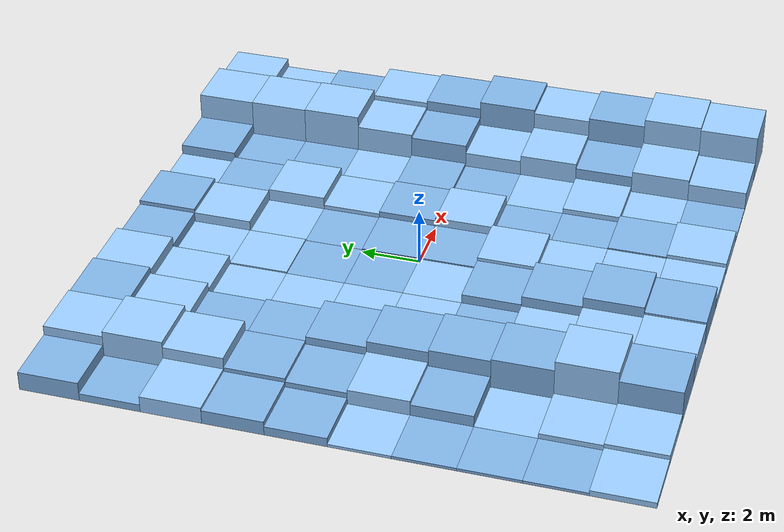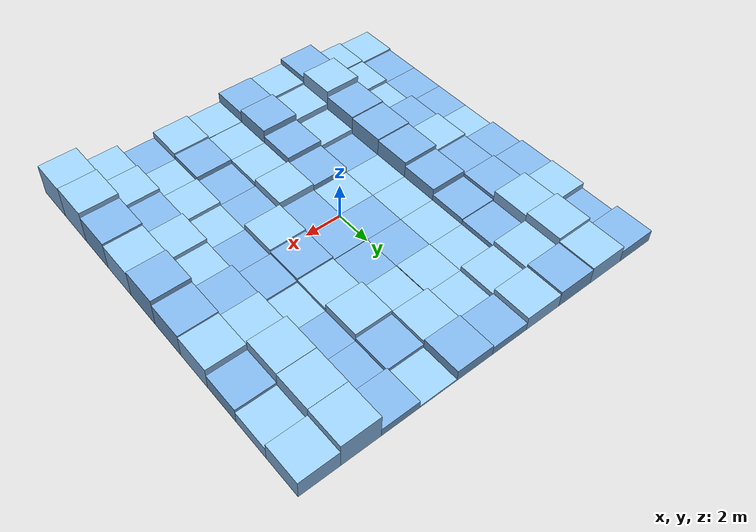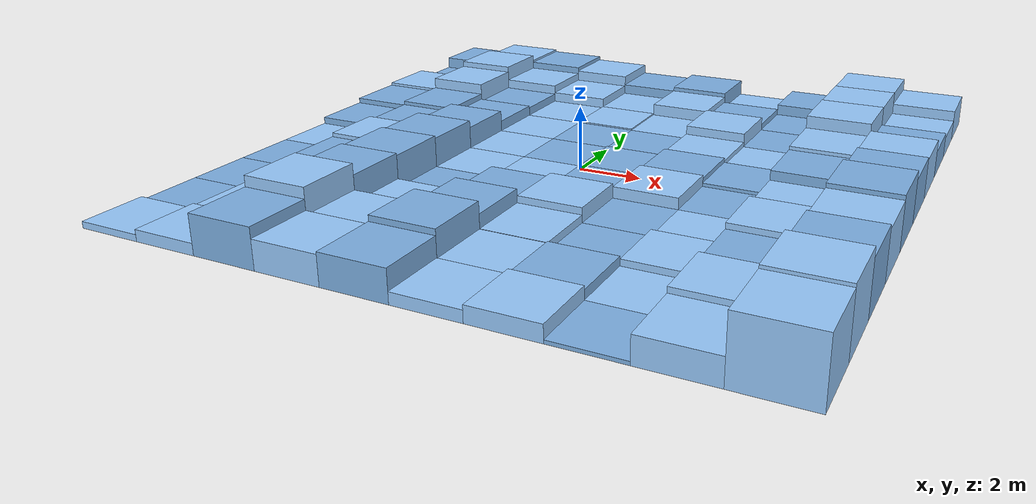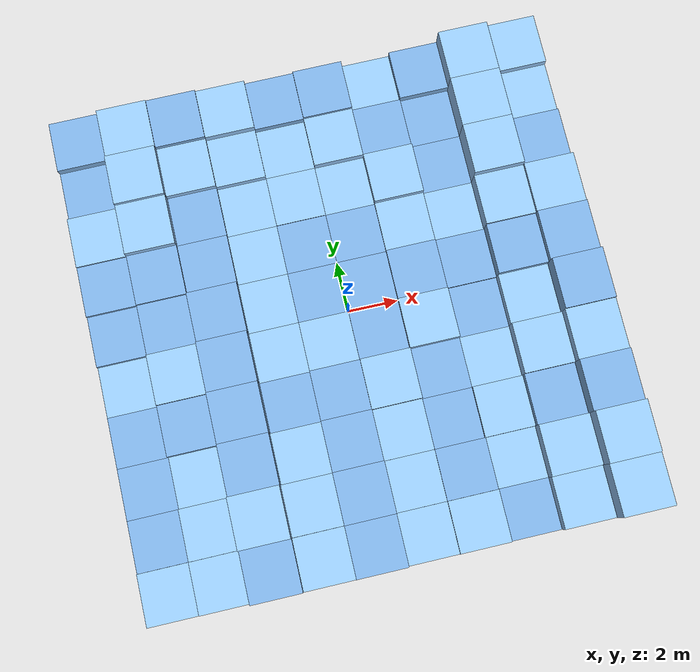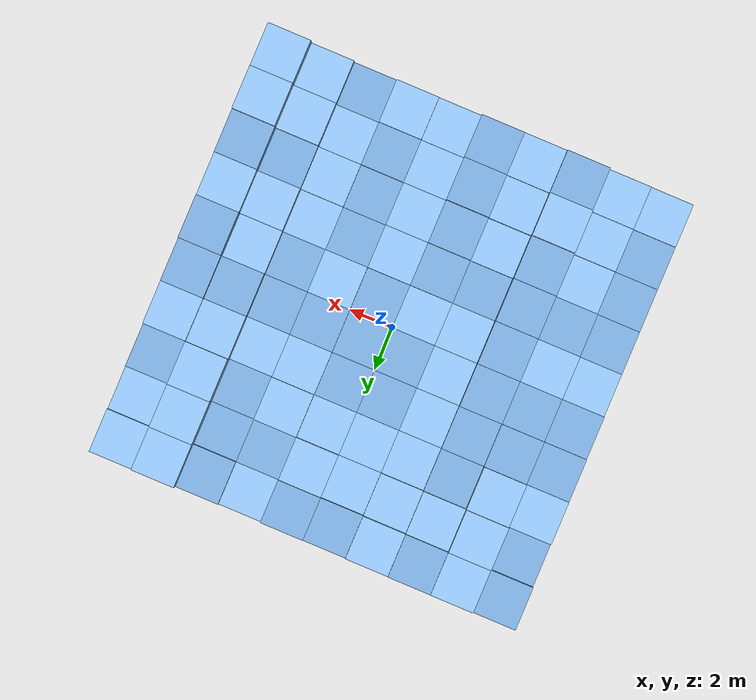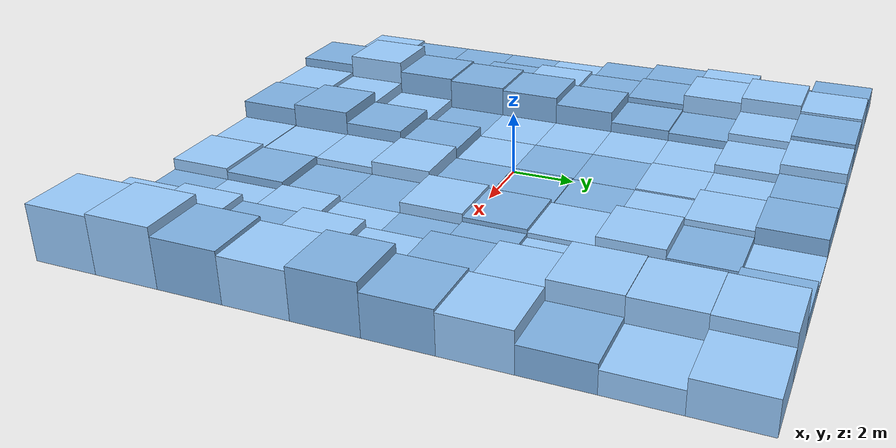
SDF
<?xml version='1.0'?>
<sdf version='1.6'>
  <world name='default'>
    <light name='sun' type='directional'>
      <cast_shadows>1</cast_shadows>
      <pose>0 0 50 0 0 0</pose>
      <diffuse>0.8 0.8 0.8 1</diffuse>
      <specular>0.2 0.2 0.2 1</specular>
      <direction>-0.5 0.5 -1</direction>
      <attenuation>
        <range>500</range>
        <constant>0.9</constant>
        <linear>0.01</linear>
        <quadratic>0.001</quadratic>
      </attenuation>
      <ambient>0.4 0.4 0.4 1</ambient>
    </light>

<model name='step_0_0'>
  <static>true</static>
  <pose>-9.0 -9.0 0.10037303684798088 0 0 0</pose>
  <link name='link'>
    <collision name='collision'>
      <geometry>
        <box>
          <size>2 2 0.20074607369596176</size>
        </box>
      </geometry>
    </collision>
    <visual name='visual'>
      <geometry>
        <box>
          <size>2 2 0.20074607369596176</size>
        </box>
      </geometry>
      <material>
        <ambient>0.6 0.8 1.0 1</ambient>
        <diffuse>0.6 0.8 1.0 1</diffuse>
      </material>
    </visual>
  </link>
</model>

<model name='step_0_1'>
  <static>true</static>
  <pose>-9.0 -7.0 0.05 0 0 0</pose>
  <link name='link'>
    <collision name='collision'>
      <geometry>
        <box>
          <size>2 2 0.1</size>
        </box>
      </geometry>
    </collision>
    <visual name='visual'>
      <geometry>
        <box>
          <size>2 2 0.1</size>
        </box>
      </geometry>
      <material>
        <ambient>0.5 0.7 0.9 1</ambient>
        <diffuse>0.5 0.7 0.9 1</diffuse>
      </material>
    </visual>
  </link>
</model>

<model name='step_0_2'>
  <static>true</static>
  <pose>-9.0 -5.0 0.05 0 0 0</pose>
  <link name='link'>
    <collision name='collision'>
      <geometry>
        <box>
          <size>2 2 0.1</size>
        </box>
      </geometry>
    </collision>
    <visual name='visual'>
      <geometry>
        <box>
          <size>2 2 0.1</size>
        </box>
      </geometry>
      <material>
        <ambient>0.5 0.7 0.9 1</ambient>
        <diffuse>0.5 0.7 0.9 1</diffuse>
      </material>
    </visual>
  </link>
</model>

<model name='step_0_3'>
  <static>true</static>
  <pose>-9.0 -3.0 0.05 0 0 0</pose>
  <link name='link'>
    <collision name='collision'>
      <geometry>
        <box>
          <size>2 2 0.1</size>
        </box>
      </geometry>
    </collision>
    <visual name='visual'>
      <geometry>
        <box>
          <size>2 2 0.1</size>
        </box>
      </geometry>
      <material>
        <ambient>0.5 0.7 0.9 1</ambient>
        <diffuse>0.5 0.7 0.9 1</diffuse>
      </material>
    </visual>
  </link>
</model>

<model name='step_0_4'>
  <static>true</static>
  <pose>-9.0 -1.0 0.05 0 0 0</pose>
  <link name='link'>
    <collision name='collision'>
      <geometry>
        <box>
          <size>2 2 0.1</size>
        </box>
      </geometry>
    </collision>
    <visual name='visual'>
      <geometry>
        <box>
          <size>2 2 0.1</size>
        </box>
      </geometry>
      <material>
        <ambient>0.6 0.8 1.0 1</ambient>
        <diffuse>0.6 0.8 1.0 1</diffuse>
      </material>
    </visual>
  </link>
</model>

<model name='step_0_5'>
  <static>true</static>
  <pose>-9.0 1.0 0.16010938551985915 0 0 0</pose>
  <link name='link'>
    <collision name='collision'>
      <geometry>
        <box>
          <size>2 2 0.3202187710397183</size>
        </box>
      </geometry>
    </collision>
    <visual name='visual'>
      <geometry>
        <box>
          <size>2 2 0.3202187710397183</size>
        </box>
      </geometry>
      <material>
        <ambient>0.5 0.7 0.9 1</ambient>
        <diffuse>0.5 0.7 0.9 1</diffuse>
      </material>
    </visual>
  </link>
</model>

<model name='step_0_6'>
  <static>true</static>
  <pose>-9.0 3.0 0.2469286984735154 0 0 0</pose>
  <link name='link'>
    <collision name='collision'>
      <geometry>
        <box>
          <size>2 2 0.4938573969470308</size>
        </box>
      </geometry>
    </collision>
    <visual name='visual'>
      <geometry>
        <box>
          <size>2 2 0.4938573969470308</size>
        </box>
      </geometry>
      <material>
        <ambient>0.5 0.7 0.9 1</ambient>
        <diffuse>0.5 0.7 0.9 1</diffuse>
      </material>
    </visual>
  </link>
</model>

<model name='step_0_7'>
  <static>true</static>
  <pose>-9.0 5.0 0.2935187337520725 0 0 0</pose>
  <link name='link'>
    <collision name='collision'>
      <geometry>
        <box>
          <size>2 2 0.587037467504145</size>
        </box>
      </geometry>
    </collision>
    <visual name='visual'>
      <geometry>
        <box>
          <size>2 2 0.587037467504145</size>
        </box>
      </geometry>
      <material>
        <ambient>0.6 0.8 1.0 1</ambient>
        <diffuse>0.6 0.8 1.0 1</diffuse>
      </material>
    </visual>
  </link>
</model>

<model name='step_0_8'>
  <static>true</static>
  <pose>-9.0 7.0 0.13311160754476217 0 0 0</pose>
  <link name='link'>
    <collision name='collision'>
      <geometry>
        <box>
          <size>2 2 0.26622321508952435</size>
        </box>
      </geometry>
    </collision>
    <visual name='visual'>
      <geometry>
        <box>
          <size>2 2 0.26622321508952435</size>
        </box>
      </geometry>
      <material>
        <ambient>0.5 0.7 0.9 1</ambient>
        <diffuse>0.5 0.7 0.9 1</diffuse>
      </material>
    </visual>
  </link>
</model>

<model name='step_0_9'>
  <static>true</static>
  <pose>-9.0 9.0 0.3322581530667359 0 0 0</pose>
  <link name='link'>
    <collision name='collision'>
      <geometry>
        <box>
          <size>2 2 0.6645163061334718</size>
        </box>
      </geometry>
    </collision>
    <visual name='visual'>
      <geometry>
        <box>
          <size>2 2 0.6645163061334718</size>
        </box>
      </geometry>
      <material>
        <ambient>0.5 0.7 0.9 1</ambient>
        <diffuse>0.5 0.7 0.9 1</diffuse>
      </material>
    </visual>
  </link>
</model>

<model name='step_1_0'>
  <static>true</static>
  <pose>-7.0 -9.0 0.1741225995129762 0 0 0</pose>
  <link name='link'>
    <collision name='collision'>
      <geometry>
        <box>
          <size>2 2 0.3482451990259524</size>
        </box>
      </geometry>
    </collision>
    <visual name='visual'>
      <geometry>
        <box>
          <size>2 2 0.3482451990259524</size>
        </box>
      </geometry>
      <material>
        <ambient>0.6 0.8 1.0 1</ambient>
        <diffuse>0.6 0.8 1.0 1</diffuse>
      </material>
    </visual>
  </link>
</model>

<model name='step_1_1'>
  <static>true</static>
  <pose>-7.0 -7.0 0.14295892030048302 0 0 0</pose>
  <link name='link'>
    <collision name='collision'>
      <geometry>
        <box>
          <size>2 2 0.28591784060096603</size>
        </box>
      </geometry>
    </collision>
    <visual name='visual'>
      <geometry>
        <box>
          <size>2 2 0.28591784060096603</size>
        </box>
      </geometry>
      <material>
        <ambient>0.6 0.8 1.0 1</ambient>
        <diffuse>0.6 0.8 1.0 1</diffuse>
      </material>
    </visual>
  </link>
</model>

<model name='step_1_2'>
  <static>true</static>
  <pose>-7.0 -5.0 0.05 0 0 0</pose>
  <link name='link'>
    <collision name='collision'>
      <geometry>
        <box>
          <size>2 2 0.1</size>
        </box>
      </geometry>
    </collision>
    <visual name='visual'>
      <geometry>
        <box>
          <size>2 2 0.1</size>
        </box>
      </geometry>
      <material>
        <ambient>0.6 0.8 1.0 1</ambient>
        <diffuse>0.6 0.8 1.0 1</diffuse>
      </material>
    </visual>
  </link>
</model>

<model name='step_1_3'>
  <static>true</static>
  <pose>-7.0 -3.0 0.2479601488900408 0 0 0</pose>
  <link name='link'>
    <collision name='collision'>
      <geometry>
        <box>
          <size>2 2 0.4959202977800816</size>
        </box>
      </geometry>
    </collision>
    <visual name='visual'>
      <geometry>
        <box>
          <size>2 2 0.4959202977800816</size>
        </box>
      </geometry>
      <material>
        <ambient>0.5 0.7 0.9 1</ambient>
        <diffuse>0.5 0.7 0.9 1</diffuse>
      </material>
    </visual>
  </link>
</model>

<model name='step_1_4'>
  <static>true</static>
  <pose>-7.0 -1.0 0.3132514967745457 0 0 0</pose>
  <link name='link'>
    <collision name='collision'>
      <geometry>
        <box>
          <size>2 2 0.6265029935490914</size>
        </box>
      </geometry>
    </collision>
    <visual name='visual'>
      <geometry>
        <box>
          <size>2 2 0.6265029935490914</size>
        </box>
      </geometry>
      <material>
        <ambient>0.6 0.8 1.0 1</ambient>
        <diffuse>0.6 0.8 1.0 1</diffuse>
      </material>
    </visual>
  </link>
</model>

<model name='step_1_5'>
  <static>true</static>
  <pose>-7.0 1.0 0.2554811889350795 0 0 0</pose>
  <link name='link'>
    <collision name='collision'>
      <geometry>
        <box>
          <size>2 2 0.510962377870159</size>
        </box>
      </geometry>
    </collision>
    <visual name='visual'>
      <geometry>
        <box>
          <size>2 2 0.510962377870159</size>
        </box>
      </geometry>
      <material>
        <ambient>0.5 0.7 0.9 1</ambient>
        <diffuse>0.5 0.7 0.9 1</diffuse>
      </material>
    </visual>
  </link>
</model>

<model name='step_1_6'>
  <static>true</static>
  <pose>-7.0 3.0 0.3179396779265873 0 0 0</pose>
  <link name='link'>
    <collision name='collision'>
      <geometry>
        <box>
          <size>2 2 0.6358793558531746</size>
        </box>
      </geometry>
    </collision>
    <visual name='visual'>
      <geometry>
        <box>
          <size>2 2 0.6358793558531746</size>
        </box>
      </geometry>
      <material>
        <ambient>0.5 0.7 0.9 1</ambient>
        <diffuse>0.5 0.7 0.9 1</diffuse>
      </material>
    </visual>
  </link>
</model>

<model name='step_1_7'>
  <static>true</static>
  <pose>-7.0 5.0 0.49630573462964633 0 0 0</pose>
  <link name='link'>
    <collision name='collision'>
      <geometry>
        <box>
          <size>2 2 0.9926114692592927</size>
        </box>
      </geometry>
    </collision>
    <visual name='visual'>
      <geometry>
        <box>
          <size>2 2 0.9926114692592927</size>
        </box>
      </geometry>
      <material>
        <ambient>0.6 0.8 1.0 1</ambient>
        <diffuse>0.6 0.8 1.0 1</diffuse>
      </material>
    </visual>
  </link>
</model>

<model name='step_1_8'>
  <static>true</static>
  <pose>-7.0 7.0 0.5938424198537917 0 0 0</pose>
  <link name='link'>
    <collision name='collision'>
      <geometry>
        <box>
          <size>2 2 1.1876848397075834</size>
        </box>
      </geometry>
    </collision>
    <visual name='visual'>
      <geometry>
        <box>
          <size>2 2 1.1876848397075834</size>
        </box>
      </geometry>
      <material>
        <ambient>0.6 0.8 1.0 1</ambient>
        <diffuse>0.6 0.8 1.0 1</diffuse>
      </material>
    </visual>
  </link>
</model>

<model name='step_1_9'>
  <static>true</static>
  <pose>-7.0 9.0 0.5006142654766133 0 0 0</pose>
  <link name='link'>
    <collision name='collision'>
      <geometry>
        <box>
          <size>2 2 1.0012285309532265</size>
        </box>
      </geometry>
    </collision>
    <visual name='visual'>
      <geometry>
        <box>
          <size>2 2 1.0012285309532265</size>
        </box>
      </geometry>
      <material>
        <ambient>0.6 0.8 1.0 1</ambient>
        <diffuse>0.6 0.8 1.0 1</diffuse>
      </material>
    </visual>
  </link>
</model>

<model name='step_2_0'>
  <static>true</static>
  <pose>-5.0 -9.0 0.588424477442824 0 0 0</pose>
  <link name='link'>
    <collision name='collision'>
      <geometry>
        <box>
          <size>2 2 1.176848954885648</size>
        </box>
      </geometry>
    </collision>
    <visual name='visual'>
      <geometry>
        <box>
          <size>2 2 1.176848954885648</size>
        </box>
      </geometry>
      <material>
        <ambient>0.5 0.7 0.9 1</ambient>
        <diffuse>0.5 0.7 0.9 1</diffuse>
      </material>
    </visual>
  </link>
</model>

<model name='step_2_1'>
  <static>true</static>
  <pose>-5.0 -7.0 0.7520871289018121 0 0 0</pose>
  <link name='link'>
    <collision name='collision'>
      <geometry>
        <box>
          <size>2 2 1.5041742578036241</size>
        </box>
      </geometry>
    </collision>
    <visual name='visual'>
      <geometry>
        <box>
          <size>2 2 1.5041742578036241</size>
        </box>
      </geometry>
      <material>
        <ambient>0.6 0.8 1.0 1</ambient>
        <diffuse>0.6 0.8 1.0 1</diffuse>
      </material>
    </visual>
  </link>
</model>

<model name='step_2_2'>
  <static>true</static>
  <pose>-5.0 -5.0 0.5826700472966997 0 0 0</pose>
  <link name='link'>
    <collision name='collision'>
      <geometry>
        <box>
          <size>2 2 1.1653400945933994</size>
        </box>
      </geometry>
    </collision>
    <visual name='visual'>
      <geometry>
        <box>
          <size>2 2 1.1653400945933994</size>
        </box>
      </geometry>
      <material>
        <ambient>0.5 0.7 0.9 1</ambient>
        <diffuse>0.5 0.7 0.9 1</diffuse>
      </material>
    </visual>
  </link>
</model>

<model name='step_2_3'>
  <static>true</static>
  <pose>-5.0 -3.0 0.549141184022937 0 0 0</pose>
  <link name='link'>
    <collision name='collision'>
      <geometry>
        <box>
          <size>2 2 1.098282368045874</size>
        </box>
      </geometry>
    </collision>
    <visual name='visual'>
      <geometry>
        <box>
          <size>2 2 1.098282368045874</size>
        </box>
      </geometry>
      <material>
        <ambient>0.5 0.7 0.9 1</ambient>
        <diffuse>0.5 0.7 0.9 1</diffuse>
      </material>
    </visual>
  </link>
</model>

<model name='step_2_4'>
  <static>true</static>
  <pose>-5.0 -1.0 0.5101402869158365 0 0 0</pose>
  <link name='link'>
    <collision name='collision'>
      <geometry>
        <box>
          <size>2 2 1.020280573831673</size>
        </box>
      </geometry>
    </collision>
    <visual name='visual'>
      <geometry>
        <box>
          <size>2 2 1.020280573831673</size>
        </box>
      </geometry>
      <material>
        <ambient>0.5 0.7 0.9 1</ambient>
        <diffuse>0.5 0.7 0.9 1</diffuse>
      </material>
    </visual>
  </link>
</model>

<model name='step_2_5'>
  <static>true</static>
  <pose>-5.0 1.0 0.39589417468506444 0 0 0</pose>
  <link name='link'>
    <collision name='collision'>
      <geometry>
        <box>
          <size>2 2 0.7917883493701289</size>
        </box>
      </geometry>
    </collision>
    <visual name='visual'>
      <geometry>
        <box>
          <size>2 2 0.7917883493701289</size>
        </box>
      </geometry>
      <material>
        <ambient>0.5 0.7 0.9 1</ambient>
        <diffuse>0.5 0.7 0.9 1</diffuse>
      </material>
    </visual>
  </link>
</model>

<model name='step_2_6'>
  <static>true</static>
  <pose>-5.0 3.0 0.22069750829412818 0 0 0</pose>
  <link name='link'>
    <collision name='collision'>
      <geometry>
        <box>
          <size>2 2 0.44139501658825636</size>
        </box>
      </geometry>
    </collision>
    <visual name='visual'>
      <geometry>
        <box>
          <size>2 2 0.44139501658825636</size>
        </box>
      </geometry>
      <material>
        <ambient>0.5 0.7 0.9 1</ambient>
        <diffuse>0.5 0.7 0.9 1</diffuse>
      </material>
    </visual>
  </link>
</model>

<model name='step_2_7'>
  <static>true</static>
  <pose>-5.0 5.0 0.18690729227968875 0 0 0</pose>
  <link name='link'>
    <collision name='collision'>
      <geometry>
        <box>
          <size>2 2 0.3738145845593775</size>
        </box>
      </geometry>
    </collision>
    <visual name='visual'>
      <geometry>
        <box>
          <size>2 2 0.3738145845593775</size>
        </box>
      </geometry>
      <material>
        <ambient>0.5 0.7 0.9 1</ambient>
        <diffuse>0.5 0.7 0.9 1</diffuse>
      </material>
    </visual>
  </link>
</model>

<model name='step_2_8'>
  <static>true</static>
  <pose>-5.0 7.0 0.34378119925814 0 0 0</pose>
  <link name='link'>
    <collision name='collision'>
      <geometry>
        <box>
          <size>2 2 0.68756239851628</size>
        </box>
      </geometry>
    </collision>
    <visual name='visual'>
      <geometry>
        <box>
          <size>2 2 0.68756239851628</size>
        </box>
      </geometry>
      <material>
        <ambient>0.6 0.8 1.0 1</ambient>
        <diffuse>0.6 0.8 1.0 1</diffuse>
      </material>
    </visual>
  </link>
</model>

<model name='step_2_9'>
  <static>true</static>
  <pose>-5.0 9.0 0.4624541513268831 0 0 0</pose>
  <link name='link'>
    <collision name='collision'>
      <geometry>
        <box>
          <size>2 2 0.9249083026537662</size>
        </box>
      </geometry>
    </collision>
    <visual name='visual'>
      <geometry>
        <box>
          <size>2 2 0.9249083026537662</size>
        </box>
      </geometry>
      <material>
        <ambient>0.5 0.7 0.9 1</ambient>
        <diffuse>0.5 0.7 0.9 1</diffuse>
      </material>
    </visual>
  </link>
</model>

<model name='step_3_0'>
  <static>true</static>
  <pose>-3.0 -9.0 0.4306981505141231 0 0 0</pose>
  <link name='link'>
    <collision name='collision'>
      <geometry>
        <box>
          <size>2 2 0.8613963010282462</size>
        </box>
      </geometry>
    </collision>
    <visual name='visual'>
      <geometry>
        <box>
          <size>2 2 0.8613963010282462</size>
        </box>
      </geometry>
      <material>
        <ambient>0.6 0.8 1.0 1</ambient>
        <diffuse>0.6 0.8 1.0 1</diffuse>
      </material>
    </visual>
  </link>
</model>

<model name='step_3_1'>
  <static>true</static>
  <pose>-3.0 -7.0 0.36364714286797595 0 0 0</pose>
  <link name='link'>
    <collision name='collision'>
      <geometry>
        <box>
          <size>2 2 0.7272942857359519</size>
        </box>
      </geometry>
    </collision>
    <visual name='visual'>
      <geometry>
        <box>
          <size>2 2 0.7272942857359519</size>
        </box>
      </geometry>
      <material>
        <ambient>0.6 0.8 1.0 1</ambient>
        <diffuse>0.6 0.8 1.0 1</diffuse>
      </material>
    </visual>
  </link>
</model>

<model name='step_3_2'>
  <static>true</static>
  <pose>-3.0 -5.0 0.18750400845685977 0 0 0</pose>
  <link name='link'>
    <collision name='collision'>
      <geometry>
        <box>
          <size>2 2 0.37500801691371954</size>
        </box>
      </geometry>
    </collision>
    <visual name='visual'>
      <geometry>
        <box>
          <size>2 2 0.37500801691371954</size>
        </box>
      </geometry>
      <material>
        <ambient>0.6 0.8 1.0 1</ambient>
        <diffuse>0.6 0.8 1.0 1</diffuse>
      </material>
    </visual>
  </link>
</model>

<model name='step_3_3'>
  <static>true</static>
  <pose>-3.0 -3.0 0.05 0 0 0</pose>
  <link name='link'>
    <collision name='collision'>
      <geometry>
        <box>
          <size>2 2 0.1</size>
        </box>
      </geometry>
    </collision>
    <visual name='visual'>
      <geometry>
        <box>
          <size>2 2 0.1</size>
        </box>
      </geometry>
      <material>
        <ambient>0.5 0.7 0.9 1</ambient>
        <diffuse>0.5 0.7 0.9 1</diffuse>
      </material>
    </visual>
  </link>
</model>

<model name='step_3_4'>
  <static>true</static>
  <pose>-3.0 -1.0 0.05 0 0 0</pose>
  <link name='link'>
    <collision name='collision'>
      <geometry>
        <box>
          <size>2 2 0.1</size>
        </box>
      </geometry>
    </collision>
    <visual name='visual'>
      <geometry>
        <box>
          <size>2 2 0.1</size>
        </box>
      </geometry>
      <material>
        <ambient>0.6 0.8 1.0 1</ambient>
        <diffuse>0.6 0.8 1.0 1</diffuse>
      </material>
    </visual>
  </link>
</model>

<model name='step_3_5'>
  <static>true</static>
  <pose>-3.0 1.0 0.05 0 0 0</pose>
  <link name='link'>
    <collision name='collision'>
      <geometry>
        <box>
          <size>2 2 0.1</size>
        </box>
      </geometry>
    </collision>
    <visual name='visual'>
      <geometry>
        <box>
          <size>2 2 0.1</size>
        </box>
      </geometry>
      <material>
        <ambient>0.6 0.8 1.0 1</ambient>
        <diffuse>0.6 0.8 1.0 1</diffuse>
      </material>
    </visual>
  </link>
</model>

<model name='step_3_6'>
  <static>true</static>
  <pose>-3.0 3.0 0.05 0 0 0</pose>
  <link name='link'>
    <collision name='collision'>
      <geometry>
        <box>
          <size>2 2 0.1</size>
        </box>
      </geometry>
    </collision>
    <visual name='visual'>
      <geometry>
        <box>
          <size>2 2 0.1</size>
        </box>
      </geometry>
      <material>
        <ambient>0.6 0.8 1.0 1</ambient>
        <diffuse>0.6 0.8 1.0 1</diffuse>
      </material>
    </visual>
  </link>
</model>

<model name='step_3_7'>
  <static>true</static>
  <pose>-3.0 5.0 0.05 0 0 0</pose>
  <link name='link'>
    <collision name='collision'>
      <geometry>
        <box>
          <size>2 2 0.1</size>
        </box>
      </geometry>
    </collision>
    <visual name='visual'>
      <geometry>
        <box>
          <size>2 2 0.1</size>
        </box>
      </geometry>
      <material>
        <ambient>0.6 0.8 1.0 1</ambient>
        <diffuse>0.6 0.8 1.0 1</diffuse>
      </material>
    </visual>
  </link>
</model>

<model name='step_3_8'>
  <static>true</static>
  <pose>-3.0 7.0 0.21532615908947206 0 0 0</pose>
  <link name='link'>
    <collision name='collision'>
      <geometry>
        <box>
          <size>2 2 0.4306523181789441</size>
        </box>
      </geometry>
    </collision>
    <visual name='visual'>
      <geometry>
        <box>
          <size>2 2 0.4306523181789441</size>
        </box>
      </geometry>
      <material>
        <ambient>0.6 0.8 1.0 1</ambient>
        <diffuse>0.6 0.8 1.0 1</diffuse>
      </material>
    </visual>
  </link>
</model>

<model name='step_3_9'>
  <static>true</static>
  <pose>-3.0 9.0 0.39644618919562646 0 0 0</pose>
  <link name='link'>
    <collision name='collision'>
      <geometry>
        <box>
          <size>2 2 0.7928923783912529</size>
        </box>
      </geometry>
    </collision>
    <visual name='visual'>
      <geometry>
        <box>
          <size>2 2 0.7928923783912529</size>
        </box>
      </geometry>
      <material>
        <ambient>0.6 0.8 1.0 1</ambient>
        <diffuse>0.6 0.8 1.0 1</diffuse>
      </material>
    </visual>
  </link>
</model>

<model name='step_4_0'>
  <static>true</static>
  <pose>-1.0 -9.0 0.4648128292921555 0 0 0</pose>
  <link name='link'>
    <collision name='collision'>
      <geometry>
        <box>
          <size>2 2 0.929625658584311</size>
        </box>
      </geometry>
    </collision>
    <visual name='visual'>
      <geometry>
        <box>
          <size>2 2 0.929625658584311</size>
        </box>
      </geometry>
      <material>
        <ambient>0.5 0.7 0.9 1</ambient>
        <diffuse>0.5 0.7 0.9 1</diffuse>
      </material>
    </visual>
  </link>
</model>

<model name='step_4_1'>
  <static>true</static>
  <pose>-1.0 -7.0 0.5530202301339904 0 0 0</pose>
  <link name='link'>
    <collision name='collision'>
      <geometry>
        <box>
          <size>2 2 1.1060404602679808</size>
        </box>
      </geometry>
    </collision>
    <visual name='visual'>
      <geometry>
        <box>
          <size>2 2 1.1060404602679808</size>
        </box>
      </geometry>
      <material>
        <ambient>0.5 0.7 0.9 1</ambient>
        <diffuse>0.5 0.7 0.9 1</diffuse>
      </material>
    </visual>
  </link>
</model>

<model name='step_4_2'>
  <static>true</static>
  <pose>-1.0 -5.0 0.37155696417180656 0 0 0</pose>
  <link name='link'>
    <collision name='collision'>
      <geometry>
        <box>
          <size>2 2 0.7431139283436131</size>
        </box>
      </geometry>
    </collision>
    <visual name='visual'>
      <geometry>
        <box>
          <size>2 2 0.7431139283436131</size>
        </box>
      </geometry>
      <material>
        <ambient>0.5 0.7 0.9 1</ambient>
        <diffuse>0.5 0.7 0.9 1</diffuse>
      </material>
    </visual>
  </link>
</model>

<model name='step_4_3'>
  <static>true</static>
  <pose>-1.0 -3.0 0.21202643135759158 0 0 0</pose>
  <link name='link'>
    <collision name='collision'>
      <geometry>
        <box>
          <size>2 2 0.42405286271518317</size>
        </box>
      </geometry>
    </collision>
    <visual name='visual'>
      <geometry>
        <box>
          <size>2 2 0.42405286271518317</size>
        </box>
      </geometry>
      <material>
        <ambient>0.5 0.7 0.9 1</ambient>
        <diffuse>0.5 0.7 0.9 1</diffuse>
      </material>
    </visual>
  </link>
</model>

<model name='step_4_4'>
  <static>true</static>
  <pose>-1.0 -1.0 0.05 0 0 0</pose>
  <link name='link'>
    <collision name='collision'>
      <geometry>
        <box>
          <size>2 2 0.1</size>
        </box>
      </geometry>
    </collision>
    <visual name='visual'>
      <geometry>
        <box>
          <size>2 2 0.1</size>
        </box>
      </geometry>
      <material>
        <ambient>0.6 0.8 1.0 1</ambient>
        <diffuse>0.6 0.8 1.0 1</diffuse>
      </material>
    </visual>
  </link>
</model>

<model name='step_4_5'>
  <static>true</static>
  <pose>-1.0 1.0 0.05 0 0 0</pose>
  <link name='link'>
    <collision name='collision'>
      <geometry>
        <box>
          <size>2 2 0.1</size>
        </box>
      </geometry>
    </collision>
    <visual name='visual'>
      <geometry>
        <box>
          <size>2 2 0.1</size>
        </box>
      </geometry>
      <material>
        <ambient>0.5 0.7 0.9 1</ambient>
        <diffuse>0.5 0.7 0.9 1</diffuse>
      </material>
    </visual>
  </link>
</model>

<model name='step_4_6'>
  <static>true</static>
  <pose>-1.0 3.0 0.05 0 0 0</pose>
  <link name='link'>
    <collision name='collision'>
      <geometry>
        <box>
          <size>2 2 0.1</size>
        </box>
      </geometry>
    </collision>
    <visual name='visual'>
      <geometry>
        <box>
          <size>2 2 0.1</size>
        </box>
      </geometry>
      <material>
        <ambient>0.5 0.7 0.9 1</ambient>
        <diffuse>0.5 0.7 0.9 1</diffuse>
      </material>
    </visual>
  </link>
</model>

<model name='step_4_7'>
  <static>true</static>
  <pose>-1.0 5.0 0.07319278753882706 0 0 0</pose>
  <link name='link'>
    <collision name='collision'>
      <geometry>
        <box>
          <size>2 2 0.14638557507765412</size>
        </box>
      </geometry>
    </collision>
    <visual name='visual'>
      <geometry>
        <box>
          <size>2 2 0.14638557507765412</size>
        </box>
      </geometry>
      <material>
        <ambient>0.6 0.8 1.0 1</ambient>
        <diffuse>0.6 0.8 1.0 1</diffuse>
      </material>
    </visual>
  </link>
</model>

<model name='step_4_8'>
  <static>true</static>
  <pose>-1.0 7.0 0.07139704010192989 0 0 0</pose>
  <link name='link'>
    <collision name='collision'>
      <geometry>
        <box>
          <size>2 2 0.14279408020385978</size>
        </box>
      </geometry>
    </collision>
    <visual name='visual'>
      <geometry>
        <box>
          <size>2 2 0.14279408020385978</size>
        </box>
      </geometry>
      <material>
        <ambient>0.6 0.8 1.0 1</ambient>
        <diffuse>0.6 0.8 1.0 1</diffuse>
      </material>
    </visual>
  </link>
</model>

<model name='step_4_9'>
  <static>true</static>
  <pose>-1.0 9.0 0.2398445551078759 0 0 0</pose>
  <link name='link'>
    <collision name='collision'>
      <geometry>
        <box>
          <size>2 2 0.4796891102157518</size>
        </box>
      </geometry>
    </collision>
    <visual name='visual'>
      <geometry>
        <box>
          <size>2 2 0.4796891102157518</size>
        </box>
      </geometry>
      <material>
        <ambient>0.5 0.7 0.9 1</ambient>
        <diffuse>0.5 0.7 0.9 1</diffuse>
      </material>
    </visual>
  </link>
</model>

<model name='step_5_0'>
  <static>true</static>
  <pose>1.0 -9.0 0.16983328679694779 0 0 0</pose>
  <link name='link'>
    <collision name='collision'>
      <geometry>
        <box>
          <size>2 2 0.33966657359389557</size>
        </box>
      </geometry>
    </collision>
    <visual name='visual'>
      <geometry>
        <box>
          <size>2 2 0.33966657359389557</size>
        </box>
      </geometry>
      <material>
        <ambient>0.6 0.8 1.0 1</ambient>
        <diffuse>0.6 0.8 1.0 1</diffuse>
      </material>
    </visual>
  </link>
</model>

<model name='step_5_1'>
  <static>true</static>
  <pose>1.0 -7.0 0.15942939556661712 0 0 0</pose>
  <link name='link'>
    <collision name='collision'>
      <geometry>
        <box>
          <size>2 2 0.31885879113323423</size>
        </box>
      </geometry>
    </collision>
    <visual name='visual'>
      <geometry>
        <box>
          <size>2 2 0.31885879113323423</size>
        </box>
      </geometry>
      <material>
        <ambient>0.6 0.8 1.0 1</ambient>
        <diffuse>0.6 0.8 1.0 1</diffuse>
      </material>
    </visual>
  </link>
</model>

<model name='step_5_2'>
  <static>true</static>
  <pose>1.0 -5.0 0.1640534203736352 0 0 0</pose>
  <link name='link'>
    <collision name='collision'>
      <geometry>
        <box>
          <size>2 2 0.3281068407472704</size>
        </box>
      </geometry>
    </collision>
    <visual name='visual'>
      <geometry>
        <box>
          <size>2 2 0.3281068407472704</size>
        </box>
      </geometry>
      <material>
        <ambient>0.6 0.8 1.0 1</ambient>
        <diffuse>0.6 0.8 1.0 1</diffuse>
      </material>
    </visual>
  </link>
</model>

<model name='step_5_3'>
  <static>true</static>
  <pose>1.0 -3.0 0.2706400739708791 0 0 0</pose>
  <link name='link'>
    <collision name='collision'>
      <geometry>
        <box>
          <size>2 2 0.5412801479417582</size>
        </box>
      </geometry>
    </collision>
    <visual name='visual'>
      <geometry>
        <box>
          <size>2 2 0.5412801479417582</size>
        </box>
      </geometry>
      <material>
        <ambient>0.6 0.8 1.0 1</ambient>
        <diffuse>0.6 0.8 1.0 1</diffuse>
      </material>
    </visual>
  </link>
</model>

<model name='step_5_4'>
  <static>true</static>
  <pose>1.0 -1.0 0.07289518165721987 0 0 0</pose>
  <link name='link'>
    <collision name='collision'>
      <geometry>
        <box>
          <size>2 2 0.14579036331443973</size>
        </box>
      </geometry>
    </collision>
    <visual name='visual'>
      <geometry>
        <box>
          <size>2 2 0.14579036331443973</size>
        </box>
      </geometry>
      <material>
        <ambient>0.5 0.7 0.9 1</ambient>
        <diffuse>0.5 0.7 0.9 1</diffuse>
      </material>
    </visual>
  </link>
</model>

<model name='step_5_5'>
  <static>true</static>
  <pose>1.0 1.0 0.06797977280102377 0 0 0</pose>
  <link name='link'>
    <collision name='collision'>
      <geometry>
        <box>
          <size>2 2 0.13595954560204754</size>
        </box>
      </geometry>
    </collision>
    <visual name='visual'>
      <geometry>
        <box>
          <size>2 2 0.13595954560204754</size>
        </box>
      </geometry>
      <material>
        <ambient>0.5 0.7 0.9 1</ambient>
        <diffuse>0.5 0.7 0.9 1</diffuse>
      </material>
    </visual>
  </link>
</model>

<model name='step_5_6'>
  <static>true</static>
  <pose>1.0 3.0 0.05 0 0 0</pose>
  <link name='link'>
    <collision name='collision'>
      <geometry>
        <box>
          <size>2 2 0.1</size>
        </box>
      </geometry>
    </collision>
    <visual name='visual'>
      <geometry>
        <box>
          <size>2 2 0.1</size>
        </box>
      </geometry>
      <material>
        <ambient>0.5 0.7 0.9 1</ambient>
        <diffuse>0.5 0.7 0.9 1</diffuse>
      </material>
    </visual>
  </link>
</model>

<model name='step_5_7'>
  <static>true</static>
  <pose>1.0 5.0 0.05 0 0 0</pose>
  <link name='link'>
    <collision name='collision'>
      <geometry>
        <box>
          <size>2 2 0.1</size>
        </box>
      </geometry>
    </collision>
    <visual name='visual'>
      <geometry>
        <box>
          <size>2 2 0.1</size>
        </box>
      </geometry>
      <material>
        <ambient>0.6 0.8 1.0 1</ambient>
        <diffuse>0.6 0.8 1.0 1</diffuse>
      </material>
    </visual>
  </link>
</model>

<model name='step_5_8'>
  <static>true</static>
  <pose>1.0 7.0 0.24328108319499725 0 0 0</pose>
  <link name='link'>
    <collision name='collision'>
      <geometry>
        <box>
          <size>2 2 0.4865621663899945</size>
        </box>
      </geometry>
    </collision>
    <visual name='visual'>
      <geometry>
        <box>
          <size>2 2 0.4865621663899945</size>
        </box>
      </geometry>
      <material>
        <ambient>0.6 0.8 1.0 1</ambient>
        <diffuse>0.6 0.8 1.0 1</diffuse>
      </material>
    </visual>
  </link>
</model>

<model name='step_5_9'>
  <static>true</static>
  <pose>1.0 9.0 0.31224262629940686 0 0 0</pose>
  <link name='link'>
    <collision name='collision'>
      <geometry>
        <box>
          <size>2 2 0.6244852525988137</size>
        </box>
      </geometry>
    </collision>
    <visual name='visual'>
      <geometry>
        <box>
          <size>2 2 0.6244852525988137</size>
        </box>
      </geometry>
      <material>
        <ambient>0.5 0.7 0.9 1</ambient>
        <diffuse>0.5 0.7 0.9 1</diffuse>
      </material>
    </visual>
  </link>
</model>

<model name='step_6_0'>
  <static>true</static>
  <pose>3.0 -9.0 0.23634122553147008 0 0 0</pose>
  <link name='link'>
    <collision name='collision'>
      <geometry>
        <box>
          <size>2 2 0.47268245106294016</size>
        </box>
      </geometry>
    </collision>
    <visual name='visual'>
      <geometry>
        <box>
          <size>2 2 0.47268245106294016</size>
        </box>
      </geometry>
      <material>
        <ambient>0.6 0.8 1.0 1</ambient>
        <diffuse>0.6 0.8 1.0 1</diffuse>
      </material>
    </visual>
  </link>
</model>

<model name='step_6_1'>
  <static>true</static>
  <pose>3.0 -7.0 0.1831037227277895 0 0 0</pose>
  <link name='link'>
    <collision name='collision'>
      <geometry>
        <box>
          <size>2 2 0.366207445455579</size>
        </box>
      </geometry>
    </collision>
    <visual name='visual'>
      <geometry>
        <box>
          <size>2 2 0.366207445455579</size>
        </box>
      </geometry>
      <material>
        <ambient>0.5 0.7 0.9 1</ambient>
        <diffuse>0.5 0.7 0.9 1</diffuse>
      </material>
    </visual>
  </link>
</model>

<model name='step_6_2'>
  <static>true</static>
  <pose>3.0 -5.0 0.05 0 0 0</pose>
  <link name='link'>
    <collision name='collision'>
      <geometry>
        <box>
          <size>2 2 0.1</size>
        </box>
      </geometry>
    </collision>
    <visual name='visual'>
      <geometry>
        <box>
          <size>2 2 0.1</size>
        </box>
      </geometry>
      <material>
        <ambient>0.5 0.7 0.9 1</ambient>
        <diffuse>0.5 0.7 0.9 1</diffuse>
      </material>
    </visual>
  </link>
</model>

<model name='step_6_3'>
  <static>true</static>
  <pose>3.0 -3.0 0.05 0 0 0</pose>
  <link name='link'>
    <collision name='collision'>
      <geometry>
        <box>
          <size>2 2 0.1</size>
        </box>
      </geometry>
    </collision>
    <visual name='visual'>
      <geometry>
        <box>
          <size>2 2 0.1</size>
        </box>
      </geometry>
      <material>
        <ambient>0.5 0.7 0.9 1</ambient>
        <diffuse>0.5 0.7 0.9 1</diffuse>
      </material>
    </visual>
  </link>
</model>

<model name='step_6_4'>
  <static>true</static>
  <pose>3.0 -1.0 0.22458137971850828 0 0 0</pose>
  <link name='link'>
    <collision name='collision'>
      <geometry>
        <box>
          <size>2 2 0.44916275943701656</size>
        </box>
      </geometry>
    </collision>
    <visual name='visual'>
      <geometry>
        <box>
          <size>2 2 0.44916275943701656</size>
        </box>
      </geometry>
      <material>
        <ambient>0.6 0.8 1.0 1</ambient>
        <diffuse>0.6 0.8 1.0 1</diffuse>
      </material>
    </visual>
  </link>
</model>

<model name='step_6_5'>
  <static>true</static>
  <pose>3.0 1.0 0.1743039177932215 0 0 0</pose>
  <link name='link'>
    <collision name='collision'>
      <geometry>
        <box>
          <size>2 2 0.348607835586443</size>
        </box>
      </geometry>
    </collision>
    <visual name='visual'>
      <geometry>
        <box>
          <size>2 2 0.348607835586443</size>
        </box>
      </geometry>
      <material>
        <ambient>0.5 0.7 0.9 1</ambient>
        <diffuse>0.5 0.7 0.9 1</diffuse>
      </material>
    </visual>
  </link>
</model>

<model name='step_6_6'>
  <static>true</static>
  <pose>3.0 3.0 0.12499424452164193 0 0 0</pose>
  <link name='link'>
    <collision name='collision'>
      <geometry>
        <box>
          <size>2 2 0.24998848904328386</size>
        </box>
      </geometry>
    </collision>
    <visual name='visual'>
      <geometry>
        <box>
          <size>2 2 0.24998848904328386</size>
        </box>
      </geometry>
      <material>
        <ambient>0.6 0.8 1.0 1</ambient>
        <diffuse>0.6 0.8 1.0 1</diffuse>
      </material>
    </visual>
  </link>
</model>

<model name='step_6_7'>
  <static>true</static>
  <pose>3.0 5.0 0.2683013838226719 0 0 0</pose>
  <link name='link'>
    <collision name='collision'>
      <geometry>
        <box>
          <size>2 2 0.5366027676453438</size>
        </box>
      </geometry>
    </collision>
    <visual name='visual'>
      <geometry>
        <box>
          <size>2 2 0.5366027676453438</size>
        </box>
      </geometry>
      <material>
        <ambient>0.6 0.8 1.0 1</ambient>
        <diffuse>0.6 0.8 1.0 1</diffuse>
      </material>
    </visual>
  </link>
</model>

<model name='step_6_8'>
  <static>true</static>
  <pose>3.0 7.0 0.14598074607071682 0 0 0</pose>
  <link name='link'>
    <collision name='collision'>
      <geometry>
        <box>
          <size>2 2 0.29196149214143363</size>
        </box>
      </geometry>
    </collision>
    <visual name='visual'>
      <geometry>
        <box>
          <size>2 2 0.29196149214143363</size>
        </box>
      </geometry>
      <material>
        <ambient>0.5 0.7 0.9 1</ambient>
        <diffuse>0.5 0.7 0.9 1</diffuse>
      </material>
    </visual>
  </link>
</model>

<model name='step_6_9'>
  <static>true</static>
  <pose>3.0 9.0 0.05 0 0 0</pose>
  <link name='link'>
    <collision name='collision'>
      <geometry>
        <box>
          <size>2 2 0.1</size>
        </box>
      </geometry>
    </collision>
    <visual name='visual'>
      <geometry>
        <box>
          <size>2 2 0.1</size>
        </box>
      </geometry>
      <material>
        <ambient>0.6 0.8 1.0 1</ambient>
        <diffuse>0.6 0.8 1.0 1</diffuse>
      </material>
    </visual>
  </link>
</model>

<model name='step_7_0'>
  <static>true</static>
  <pose>5.0 -9.0 0.05 0 0 0</pose>
  <link name='link'>
    <collision name='collision'>
      <geometry>
        <box>
          <size>2 2 0.1</size>
        </box>
      </geometry>
    </collision>
    <visual name='visual'>
      <geometry>
        <box>
          <size>2 2 0.1</size>
        </box>
      </geometry>
      <material>
        <ambient>0.5 0.7 0.9 1</ambient>
        <diffuse>0.5 0.7 0.9 1</diffuse>
      </material>
    </visual>
  </link>
</model>

<model name='step_7_1'>
  <static>true</static>
  <pose>5.0 -7.0 0.05 0 0 0</pose>
  <link name='link'>
    <collision name='collision'>
      <geometry>
        <box>
          <size>2 2 0.1</size>
        </box>
      </geometry>
    </collision>
    <visual name='visual'>
      <geometry>
        <box>
          <size>2 2 0.1</size>
        </box>
      </geometry>
      <material>
        <ambient>0.6 0.8 1.0 1</ambient>
        <diffuse>0.6 0.8 1.0 1</diffuse>
      </material>
    </visual>
  </link>
</model>

<model name='step_7_2'>
  <static>true</static>
  <pose>5.0 -5.0 0.14580156140363326 0 0 0</pose>
  <link name='link'>
    <collision name='collision'>
      <geometry>
        <box>
          <size>2 2 0.2916031228072665</size>
        </box>
      </geometry>
    </collision>
    <visual name='visual'>
      <geometry>
        <box>
          <size>2 2 0.2916031228072665</size>
        </box>
      </geometry>
      <material>
        <ambient>0.6 0.8 1.0 1</ambient>
        <diffuse>0.6 0.8 1.0 1</diffuse>
      </material>
    </visual>
  </link>
</model>

<model name='step_7_3'>
  <static>true</static>
  <pose>5.0 -3.0 0.05 0 0 0</pose>
  <link name='link'>
    <collision name='collision'>
      <geometry>
        <box>
          <size>2 2 0.1</size>
        </box>
      </geometry>
    </collision>
    <visual name='visual'>
      <geometry>
        <box>
          <size>2 2 0.1</size>
        </box>
      </geometry>
      <material>
        <ambient>0.6 0.8 1.0 1</ambient>
        <diffuse>0.6 0.8 1.0 1</diffuse>
      </material>
    </visual>
  </link>
</model>

<model name='step_7_4'>
  <static>true</static>
  <pose>5.0 -1.0 0.05 0 0 0</pose>
  <link name='link'>
    <collision name='collision'>
      <geometry>
        <box>
          <size>2 2 0.1</size>
        </box>
      </geometry>
    </collision>
    <visual name='visual'>
      <geometry>
        <box>
          <size>2 2 0.1</size>
        </box>
      </geometry>
      <material>
        <ambient>0.5 0.7 0.9 1</ambient>
        <diffuse>0.5 0.7 0.9 1</diffuse>
      </material>
    </visual>
  </link>
</model>

<model name='step_7_5'>
  <static>true</static>
  <pose>5.0 1.0 0.10252732673593835 0 0 0</pose>
  <link name='link'>
    <collision name='collision'>
      <geometry>
        <box>
          <size>2 2 0.2050546534718767</size>
        </box>
      </geometry>
    </collision>
    <visual name='visual'>
      <geometry>
        <box>
          <size>2 2 0.2050546534718767</size>
        </box>
      </geometry>
      <material>
        <ambient>0.5 0.7 0.9 1</ambient>
        <diffuse>0.5 0.7 0.9 1</diffuse>
      </material>
    </visual>
  </link>
</model>

<model name='step_7_6'>
  <static>true</static>
  <pose>5.0 3.0 0.05 0 0 0</pose>
  <link name='link'>
    <collision name='collision'>
      <geometry>
        <box>
          <size>2 2 0.1</size>
        </box>
      </geometry>
    </collision>
    <visual name='visual'>
      <geometry>
        <box>
          <size>2 2 0.1</size>
        </box>
      </geometry>
      <material>
        <ambient>0.6 0.8 1.0 1</ambient>
        <diffuse>0.6 0.8 1.0 1</diffuse>
      </material>
    </visual>
  </link>
</model>

<model name='step_7_7'>
  <static>true</static>
  <pose>5.0 5.0 0.05 0 0 0</pose>
  <link name='link'>
    <collision name='collision'>
      <geometry>
        <box>
          <size>2 2 0.1</size>
        </box>
      </geometry>
    </collision>
    <visual name='visual'>
      <geometry>
        <box>
          <size>2 2 0.1</size>
        </box>
      </geometry>
      <material>
        <ambient>0.5 0.7 0.9 1</ambient>
        <diffuse>0.5 0.7 0.9 1</diffuse>
      </material>
    </visual>
  </link>
</model>

<model name='step_7_8'>
  <static>true</static>
  <pose>5.0 7.0 0.05 0 0 0</pose>
  <link name='link'>
    <collision name='collision'>
      <geometry>
        <box>
          <size>2 2 0.1</size>
        </box>
      </geometry>
    </collision>
    <visual name='visual'>
      <geometry>
        <box>
          <size>2 2 0.1</size>
        </box>
      </geometry>
      <material>
        <ambient>0.5 0.7 0.9 1</ambient>
        <diffuse>0.5 0.7 0.9 1</diffuse>
      </material>
    </visual>
  </link>
</model>

<model name='step_7_9'>
  <static>true</static>
  <pose>5.0 9.0 0.22828382048257206 0 0 0</pose>
  <link name='link'>
    <collision name='collision'>
      <geometry>
        <box>
          <size>2 2 0.45656764096514413</size>
        </box>
      </geometry>
    </collision>
    <visual name='visual'>
      <geometry>
        <box>
          <size>2 2 0.45656764096514413</size>
        </box>
      </geometry>
      <material>
        <ambient>0.5 0.7 0.9 1</ambient>
        <diffuse>0.5 0.7 0.9 1</diffuse>
      </material>
    </visual>
  </link>
</model>

<model name='step_8_0'>
  <static>true</static>
  <pose>7.0 -9.0 0.3659399118656861 0 0 0</pose>
  <link name='link'>
    <collision name='collision'>
      <geometry>
        <box>
          <size>2 2 0.7318798237313722</size>
        </box>
      </geometry>
    </collision>
    <visual name='visual'>
      <geometry>
        <box>
          <size>2 2 0.7318798237313722</size>
        </box>
      </geometry>
      <material>
        <ambient>0.6 0.8 1.0 1</ambient>
        <diffuse>0.6 0.8 1.0 1</diffuse>
      </material>
    </visual>
  </link>
</model>

<model name='step_8_1'>
  <static>true</static>
  <pose>7.0 -7.0 0.4466961561485728 0 0 0</pose>
  <link name='link'>
    <collision name='collision'>
      <geometry>
        <box>
          <size>2 2 0.8933923122971456</size>
        </box>
      </geometry>
    </collision>
    <visual name='visual'>
      <geometry>
        <box>
          <size>2 2 0.8933923122971456</size>
        </box>
      </geometry>
      <material>
        <ambient>0.6 0.8 1.0 1</ambient>
        <diffuse>0.6 0.8 1.0 1</diffuse>
      </material>
    </visual>
  </link>
</model>

<model name='step_8_2'>
  <static>true</static>
  <pose>7.0 -5.0 0.3441300503464565 0 0 0</pose>
  <link name='link'>
    <collision name='collision'>
      <geometry>
        <box>
          <size>2 2 0.688260100692913</size>
        </box>
      </geometry>
    </collision>
    <visual name='visual'>
      <geometry>
        <box>
          <size>2 2 0.688260100692913</size>
        </box>
      </geometry>
      <material>
        <ambient>0.5 0.7 0.9 1</ambient>
        <diffuse>0.5 0.7 0.9 1</diffuse>
      </material>
    </visual>
  </link>
</model>

<model name='step_8_3'>
  <static>true</static>
  <pose>7.0 -3.0 0.43009962169594584 0 0 0</pose>
  <link name='link'>
    <collision name='collision'>
      <geometry>
        <box>
          <size>2 2 0.8601992433918917</size>
        </box>
      </geometry>
    </collision>
    <visual name='visual'>
      <geometry>
        <box>
          <size>2 2 0.8601992433918917</size>
        </box>
      </geometry>
      <material>
        <ambient>0.6 0.8 1.0 1</ambient>
        <diffuse>0.6 0.8 1.0 1</diffuse>
      </material>
    </visual>
  </link>
</model>

<model name='step_8_4'>
  <static>true</static>
  <pose>7.0 -1.0 0.31637075487421484 0 0 0</pose>
  <link name='link'>
    <collision name='collision'>
      <geometry>
        <box>
          <size>2 2 0.6327415097484297</size>
        </box>
      </geometry>
    </collision>
    <visual name='visual'>
      <geometry>
        <box>
          <size>2 2 0.6327415097484297</size>
        </box>
      </geometry>
      <material>
        <ambient>0.6 0.8 1.0 1</ambient>
        <diffuse>0.6 0.8 1.0 1</diffuse>
      </material>
    </visual>
  </link>
</model>

<model name='step_8_5'>
  <static>true</static>
  <pose>7.0 1.0 0.4640506576103878 0 0 0</pose>
  <link name='link'>
    <collision name='collision'>
      <geometry>
        <box>
          <size>2 2 0.9281013152207755</size>
        </box>
      </geometry>
    </collision>
    <visual name='visual'>
      <geometry>
        <box>
          <size>2 2 0.9281013152207755</size>
        </box>
      </geometry>
      <material>
        <ambient>0.5 0.7 0.9 1</ambient>
        <diffuse>0.5 0.7 0.9 1</diffuse>
      </material>
    </visual>
  </link>
</model>

<model name='step_8_6'>
  <static>true</static>
  <pose>7.0 3.0 0.5193728346603403 0 0 0</pose>
  <link name='link'>
    <collision name='collision'>
      <geometry>
        <box>
          <size>2 2 1.0387456693206807</size>
        </box>
      </geometry>
    </collision>
    <visual name='visual'>
      <geometry>
        <box>
          <size>2 2 1.0387456693206807</size>
        </box>
      </geometry>
      <material>
        <ambient>0.6 0.8 1.0 1</ambient>
        <diffuse>0.6 0.8 1.0 1</diffuse>
      </material>
    </visual>
  </link>
</model>

<model name='step_8_7'>
  <static>true</static>
  <pose>7.0 5.0 0.716726352338579 0 0 0</pose>
  <link name='link'>
    <collision name='collision'>
      <geometry>
        <box>
          <size>2 2 1.433452704677158</size>
        </box>
      </geometry>
    </collision>
    <visual name='visual'>
      <geometry>
        <box>
          <size>2 2 1.433452704677158</size>
        </box>
      </geometry>
      <material>
        <ambient>0.6 0.8 1.0 1</ambient>
        <diffuse>0.6 0.8 1.0 1</diffuse>
      </material>
    </visual>
  </link>
</model>

<model name='step_8_8'>
  <static>true</static>
  <pose>7.0 7.0 0.70540791418967 0 0 0</pose>
  <link name='link'>
    <collision name='collision'>
      <geometry>
        <box>
          <size>2 2 1.41081582837934</size>
        </box>
      </geometry>
    </collision>
    <visual name='visual'>
      <geometry>
        <box>
          <size>2 2 1.41081582837934</size>
        </box>
      </geometry>
      <material>
        <ambient>0.6 0.8 1.0 1</ambient>
        <diffuse>0.6 0.8 1.0 1</diffuse>
      </material>
    </visual>
  </link>
</model>

<model name='step_8_9'>
  <static>true</static>
  <pose>7.0 9.0 0.6986046107667506 0 0 0</pose>
  <link name='link'>
    <collision name='collision'>
      <geometry>
        <box>
          <size>2 2 1.3972092215335012</size>
        </box>
      </geometry>
    </collision>
    <visual name='visual'>
      <geometry>
        <box>
          <size>2 2 1.3972092215335012</size>
        </box>
      </geometry>
      <material>
        <ambient>0.6 0.8 1.0 1</ambient>
        <diffuse>0.6 0.8 1.0 1</diffuse>
      </material>
    </visual>
  </link>
</model>

<model name='step_9_0'>
  <static>true</static>
  <pose>9.0 -9.0 0.8743786500156663 0 0 0</pose>
  <link name='link'>
    <collision name='collision'>
      <geometry>
        <box>
          <size>2 2 1.7487573000313326</size>
        </box>
      </geometry>
    </collision>
    <visual name='visual'>
      <geometry>
        <box>
          <size>2 2 1.7487573000313326</size>
        </box>
      </geometry>
      <material>
        <ambient>0.6 0.8 1.0 1</ambient>
        <diffuse>0.6 0.8 1.0 1</diffuse>
      </material>
    </visual>
  </link>
</model>

<model name='step_9_1'>
  <static>true</static>
  <pose>9.0 -7.0 0.9183092754102062 0 0 0</pose>
  <link name='link'>
    <collision name='collision'>
      <geometry>
        <box>
          <size>2 2 1.8366185508204125</size>
        </box>
      </geometry>
    </collision>
    <visual name='visual'>
      <geometry>
        <box>
          <size>2 2 1.8366185508204125</size>
        </box>
      </geometry>
      <material>
        <ambient>0.6 0.8 1.0 1</ambient>
        <diffuse>0.6 0.8 1.0 1</diffuse>
      </material>
    </visual>
  </link>
</model>

<model name='step_9_2'>
  <static>true</static>
  <pose>9.0 -5.0 0.7817701499526026 0 0 0</pose>
  <link name='link'>
    <collision name='collision'>
      <geometry>
        <box>
          <size>2 2 1.5635402999052053</size>
        </box>
      </geometry>
    </collision>
    <visual name='visual'>
      <geometry>
        <box>
          <size>2 2 1.5635402999052053</size>
        </box>
      </geometry>
      <material>
        <ambient>0.5 0.7 0.9 1</ambient>
        <diffuse>0.5 0.7 0.9 1</diffuse>
      </material>
    </visual>
  </link>
</model>

<model name='step_9_3'>
  <static>true</static>
  <pose>9.0 -3.0 0.7202639786128698 0 0 0</pose>
  <link name='link'>
    <collision name='collision'>
      <geometry>
        <box>
          <size>2 2 1.4405279572257397</size>
        </box>
      </geometry>
    </collision>
    <visual name='visual'>
      <geometry>
        <box>
          <size>2 2 1.4405279572257397</size>
        </box>
      </geometry>
      <material>
        <ambient>0.6 0.8 1.0 1</ambient>
        <diffuse>0.6 0.8 1.0 1</diffuse>
      </material>
    </visual>
  </link>
</model>

<model name='step_9_4'>
  <static>true</static>
  <pose>9.0 -1.0 0.7870567075783685 0 0 0</pose>
  <link name='link'>
    <collision name='collision'>
      <geometry>
        <box>
          <size>2 2 1.574113415156737</size>
        </box>
      </geometry>
    </collision>
    <visual name='visual'>
      <geometry>
        <box>
          <size>2 2 1.574113415156737</size>
        </box>
      </geometry>
      <material>
        <ambient>0.5 0.7 0.9 1</ambient>
        <diffuse>0.5 0.7 0.9 1</diffuse>
      </material>
    </visual>
  </link>
</model>

<model name='step_9_5'>
  <static>true</static>
  <pose>9.0 1.0 0.6499405325653504 0 0 0</pose>
  <link name='link'>
    <collision name='collision'>
      <geometry>
        <box>
          <size>2 2 1.299881065130701</size>
        </box>
      </geometry>
    </collision>
    <visual name='visual'>
      <geometry>
        <box>
          <size>2 2 1.299881065130701</size>
        </box>
      </geometry>
      <material>
        <ambient>0.5 0.7 0.9 1</ambient>
        <diffuse>0.5 0.7 0.9 1</diffuse>
      </material>
    </visual>
  </link>
</model>

<model name='step_9_6'>
  <static>true</static>
  <pose>9.0 3.0 0.6075200440106453 0 0 0</pose>
  <link name='link'>
    <collision name='collision'>
      <geometry>
        <box>
          <size>2 2 1.2150400880212906</size>
        </box>
      </geometry>
    </collision>
    <visual name='visual'>
      <geometry>
        <box>
          <size>2 2 1.2150400880212906</size>
        </box>
      </geometry>
      <material>
        <ambient>0.6 0.8 1.0 1</ambient>
        <diffuse>0.6 0.8 1.0 1</diffuse>
      </material>
    </visual>
  </link>
</model>

<model name='step_9_7'>
  <static>true</static>
  <pose>9.0 5.0 0.4182925235497118 0 0 0</pose>
  <link name='link'>
    <collision name='collision'>
      <geometry>
        <box>
          <size>2 2 0.8365850470994236</size>
        </box>
      </geometry>
    </collision>
    <visual name='visual'>
      <geometry>
        <box>
          <size>2 2 0.8365850470994236</size>
        </box>
      </geometry>
      <material>
        <ambient>0.5 0.7 0.9 1</ambient>
        <diffuse>0.5 0.7 0.9 1</diffuse>
      </material>
    </visual>
  </link>
</model>

<model name='step_9_8'>
  <static>true</static>
  <pose>9.0 7.0 0.3374860754060554 0 0 0</pose>
  <link name='link'>
    <collision name='collision'>
      <geometry>
        <box>
          <size>2 2 0.6749721508121108</size>
        </box>
      </geometry>
    </collision>
    <visual name='visual'>
      <geometry>
        <box>
          <size>2 2 0.6749721508121108</size>
        </box>
      </geometry>
      <material>
        <ambient>0.6 0.8 1.0 1</ambient>
        <diffuse>0.6 0.8 1.0 1</diffuse>
      </material>
    </visual>
  </link>
</model>

<model name='step_9_9'>
  <static>true</static>
  <pose>9.0 9.0 0.5018709369359597 0 0 0</pose>
  <link name='link'>
    <collision name='collision'>
      <geometry>
        <box>
          <size>2 2 1.0037418738719195</size>
        </box>
      </geometry>
    </collision>
    <visual name='visual'>
      <geometry>
        <box>
          <size>2 2 1.0037418738719195</size>
        </box>
      </geometry>
      <material>
        <ambient>0.6 0.8 1.0 1</ambient>
        <diffuse>0.6 0.8 1.0 1</diffuse>
      </material>
    </visual>
  </link>
</model>

  </world>
</sdf>
